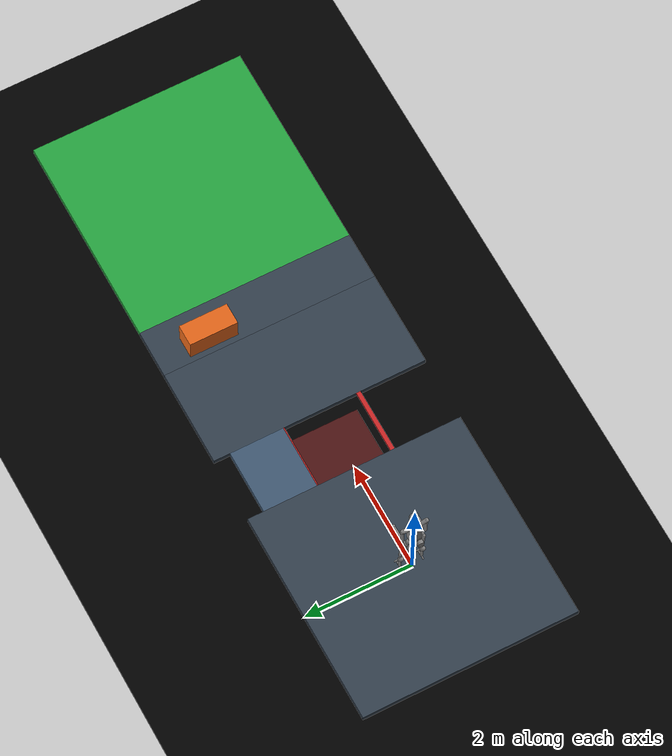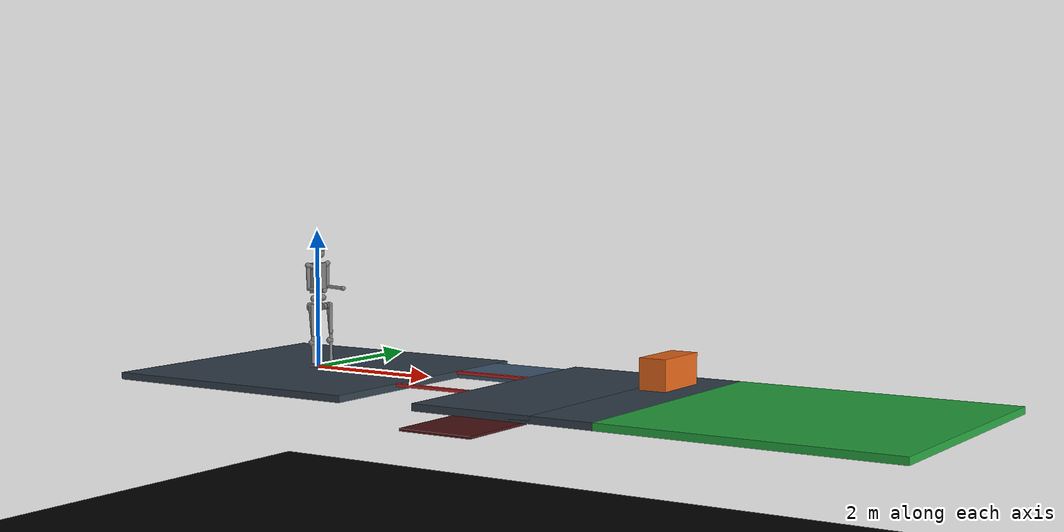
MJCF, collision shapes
<mujoco model="h1 obstacle course">
  <include file="h1.xml"/>

  <visual>
    <headlight diffuse="0.7 0.7 0.7" ambient="0.3 0.3 0.3" specular="0.1 0.1 0.1"/>
    <rgba haze="0.15 0.25 0.35 1"/>
    <global azimuth="150" elevation="-25"/>
  </visual>

  <asset>
    <texture type="skybox" builtin="gradient" rgb1="0.3 0.5 0.7" rgb2="0 0 0" width="512" height="3072"/>
    <texture type="2d" name="groundplane" builtin="checker" mark="edge" rgb1="0.25 0.3 0.35" rgb2="0.15 0.2 0.25"
      markrgb="0.8 0.8 0.8" width="300" height="300"/>
    <material name="groundplane" texture="groundplane" texuniform="true" texrepeat="5 5" reflectance="0.15"/>

    <texture type="2d" name="pit_texture" builtin="flat" rgb1="0.1 0.05 0.05" width="100" height="100"/>
    <material name="pit_mat" rgba="0.3 0.08 0.08 1" reflectance="0.05"/>
    <material name="pit_hazard" rgba="0.8 0.15 0.15 1"/>

    <material name="box_mat" rgba="0.9 0.4 0.1 1" reflectance="0.3"/>
    <material name="finish_mat" rgba="0.15 0.65 0.25 1" reflectance="0.2"/>
    <material name="bypass_mat" rgba="0.25 0.35 0.45 1" reflectance="0.2"/>
  </asset>

  <worldbody>
    <light pos="0 0 4.0" dir="0 0 -1" directional="true"/>
    <light pos="5 0 4.0" dir="0 0 -1" directional="true"/>

    <!-- ZONE 1: START AREA (x: -2.0 to +2.0)                             -->
    <geom name="start_platform" type="box" size="2.0 2.0 0.05" pos="0 0 -0.05" material="groundplane" contype="1" conaffinity="1"/>

    <!-- ZONE 2: PIT HAZARD (x: 2.0 to 3.2)                              -->
    <!-- Center path has a 1.2m wide pit (gap); side path has a bridge    -->
    <!-- Pit hole (bottom floor 0.6m deep) -->
    <geom name="pit_floor" type="box" size="0.6 0.7 0.02" pos="2.6 0 -0.65" material="pit_mat" contype="1" conaffinity="1"/>
    <!-- Pit warning hazard border -->
    <geom name="pit_border_left" type="box" size="0.6 0.04 0.02" pos="2.6 -0.72 -0.02" material="pit_hazard" contype="1" conaffinity="1"/>
    <geom name="pit_border_right" type="box" size="0.6 0.04 0.02" pos="2.6 0.72 -0.02" material="pit_hazard" contype="1" conaffinity="1"/>
    <!-- Side bypass lane (allows robot to navigate around the pit on the right side) -->
    <geom name="pit_bypass" type="box" size="0.6 0.5 0.05" pos="2.6 1.2 -0.05" material="bypass_mat" contype="1" conaffinity="1"/>

    <!-- ZONE 3: MID PLATFORM (x: 3.2 to 5.0)                             -->
    <geom name="mid_platform" type="box" size="0.9 2.0 0.05" pos="4.1 0 -0.05" material="groundplane" contype="1" conaffinity="1"/>

    <!-- ZONE 4: OBSTACLE BOX (at x: 5.3)                                 -->
    <!-- Square Box on the bypass trajectory (x=5.3, y=0.8, height=0.45m) -->
    <geom name="obstacle_box" type="box" size="0.20 0.45 0.22" pos="5.3 1.0 0.22" material="box_mat" contype="1" conaffinity="1"/>
    <geom name="box_platform" type="box" size="0.6 2.0 0.05" pos="5.3 0 -0.05" material="groundplane" contype="1" conaffinity="1"/>

    <!-- ZONE 5: FINISH AREA (x: 6.0 to 10.0)                             -->
    <geom name="finish_platform" type="box" size="2.0 2.0 0.05" pos="7.9 0 -0.05" material="finish_mat" contype="1" conaffinity="1"/>

    <!-- Deep catch net for clean simulation resets -->
    <geom name="safety_catch" type="box" size="15 10 0.01" pos="5 0 -2.5" rgba="0 0 0 0" contype="1" conaffinity="1"/>
  </worldbody>

  <keyframe>
    <key name="home" qpos="0 0 0.98 1 0 0 0 0 0 -0.4 0.8 -0.4 0 0 -0.4 0.8 -0.4 0 0 0 0 0 0 0 0 0"/>
  </keyframe>
</mujoco>

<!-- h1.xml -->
<mujoco model="h1">
  <compiler angle="radian" meshdir="assets" autolimits="true"/>

  <statistic meansize="0.05"/>

  <default>
    <default class="h1">
      <joint damping="1" armature="0.1"/>
      <default class="visual">
        <geom type="mesh" contype="0" conaffinity="0" group="2" material="black"/>
      </default>
      <default class="collision">
        <geom group="3" mass="0" density="0"/>
        <default class="foot">
          <geom type="capsule" size=".014"/>
          <default class="foot1">
            <geom fromto="-.035 0 -0.056 .02 0 -0.045"/>
          </default>
          <default class="foot2">
            <geom fromto=".02 0 -0.045 .115 0 -0.056"/>
          </default>
          <default class="foot3">
            <geom fromto=".14 -.03 -0.056 .14 .03 -0.056"/>
          </default>
        </default>
      </default>
      <site size="0.001" rgba="0.5 0.5 0.5 0.3" group="4"/>
    </default>
  </default>

  <asset>
    <material name="black" rgba="0.1 0.1 0.1 1"/>
    <material name="white" rgba="1 1 1 1"/>

    <mesh file="pelvis.stl"/>
    <mesh file="left_hip_yaw_link.stl"/>
    <mesh file="left_hip_roll_link.stl"/>
    <mesh file="left_hip_pitch_link.stl"/>
    <mesh file="left_knee_link.stl"/>
    <mesh file="left_ankle_link.stl"/>
    <mesh file="right_hip_yaw_link.stl"/>
    <mesh file="right_hip_roll_link.stl"/>
    <mesh file="right_hip_pitch_link.stl"/>
    <mesh file="right_knee_link.stl"/>
    <mesh file="right_ankle_link.stl"/>
    <mesh file="torso_link.stl"/>
    <mesh file="left_shoulder_pitch_link.stl"/>
    <mesh file="left_shoulder_roll_link.stl"/>
    <mesh file="left_shoulder_yaw_link.stl"/>
    <mesh file="left_elbow_link.stl"/>
    <mesh file="right_shoulder_pitch_link.stl"/>
    <mesh file="right_shoulder_roll_link.stl"/>
    <mesh file="right_shoulder_yaw_link.stl"/>
    <mesh file="right_elbow_link.stl"/>
    <mesh file="logo_link.stl"/>
  </asset>

  <worldbody>
    <light mode="targetbodycom" target="torso_link" pos="2 0 2.5"/>
    <body name="pelvis" pos="0 0 1.06" childclass="h1">
      <inertial pos="-0.0002 4e-05 -0.04522" quat="0.498303 0.499454 -0.500496 0.501741" mass="5.39"
        diaginertia="0.0490211 0.0445821 0.00824619"/>
      <freejoint/>
      <geom class="visual" mesh="pelvis"/>
      <body name="left_hip_yaw_link" pos="0 0.0875 -0.1742">
        <inertial pos="-0.04923 0.0001 0.0072" quat="0.69699 0.219193 0.233287 0.641667" mass="2.244"
          diaginertia="0.00304494 0.00296885 0.00189201"/>
        <joint name="left_hip_yaw" axis="0 0 1" range="-0.43 0.43"/>
        <geom class="visual" mesh="left_hip_yaw_link"/>
        <geom size="0.06 0.035" pos="-0.067 0 0" quat="0.707123 0 0.70709 0" type="cylinder" class="collision"/>
        <body name="left_hip_roll_link" pos="0.039468 0 0">
          <inertial pos="-0.0058 -0.00319 -9e-05" quat="0.0438242 0.70721 -0.0729075 0.701867" mass="2.232"
            diaginertia="0.00243264 0.00225325 0.00205492"/>
          <joint name="left_hip_roll" axis="1 0 0" range="-0.43 0.43"/>
          <geom class="visual" mesh="left_hip_roll_link"/>
          <geom class="collision" type="cylinder" size="0.05 0.03" quat="1 1 0 0" pos="0 -0.02 0"/>
          <body name="left_hip_pitch_link" pos="0 0.11536 0">
            <inertial pos="0.00746 -0.02346 -0.08193" quat="0.979828 0.0513522 -0.0169854 -0.192382" mass="4.152"
              diaginertia="0.0829503 0.0821457 0.00510909"/>
            <joint name="left_hip_pitch" axis="0 1 0" range="-1.57 1.57"/>
            <geom class="visual" mesh="left_hip_pitch_link"/>
            <geom class="collision" type="capsule" size="0.03" fromto="0.02 0 -0.4 -0.02 0 0.02"/>
            <geom class="collision" type="capsule" size="0.03" fromto="0.02 0 -0.4 0.02 0 0.02"/>
            <geom class="collision" type="cylinder" size="0.05 0.02" quat="1 1 0 0" pos="0 -0.07 0"/>
            <body name="left_knee_link" pos="0 0 -0.4">
              <inertial pos="-0.00136 -0.00512 -0.1384" quat="0.626132 -0.034227 -0.0416277 0.777852" mass="1.721"
                diaginertia="0.0125237 0.0123104 0.0019428"/>
              <joint name="left_knee" axis="0 1 0" range="-0.26 2.05"/>
              <geom class="visual" mesh="left_knee_link"/>
              <geom class="collision" type="capsule" size="0.025" fromto="0.02 0 -0.4 0.02 0 0"/>
              <geom class="collision" type="sphere" size="0.05" pos="0 0 -0.115"/>
              <body name="left_ankle_link" pos="0 0 -0.4">
                <inertial pos="0.06722 0.00015 -0.04497" quat="0.489101 0.503197 0.565782 0.432972" mass="0.446"
                  diaginertia="0.00220848 0.00218961 0.000214202"/>
                <joint name="left_ankle" axis="0 1 0" range="-0.87 0.52"/>
                <geom class="visual" mesh="left_ankle_link"/>
                <geom class="foot1"/>
                <geom class="foot2"/>
                <geom class="foot3"/>
              </body>
            </body>
          </body>
        </body>
      </body>
      <body name="right_hip_yaw_link" pos="0 -0.0875 -0.1742">
        <inertial pos="-0.04923 -0.0001 0.0072" quat="0.641667 0.233287 0.219193 0.69699" mass="2.244"
          diaginertia="0.00304494 0.00296885 0.00189201"/>
        <joint name="right_hip_yaw" axis="0 0 1" range="-0.43 0.43"/>
        <geom class="visual" mesh="right_hip_yaw_link"/>
        <geom size="0.06 0.035" pos="-0.067 0 0" quat="0.707123 0 0.70709 0" type="cylinder" class="collision"/>
        <body name="right_hip_roll_link" pos="0.039468 0 0">
          <inertial pos="-0.0058 0.00319 -9e-05" quat="-0.0438242 0.70721 0.0729075 0.701867" mass="2.232"
            diaginertia="0.00243264 0.00225325 0.00205492"/>
          <joint name="right_hip_roll" axis="1 0 0" range="-0.43 0.43"/>
          <geom class="visual" mesh="right_hip_roll_link"/>
          <geom class="collision" type="cylinder" size="0.05 0.03" quat="1 1 0 0" pos="0 0.02 0"/>
          <body name="right_hip_pitch_link" pos="0 -0.11536 0">
            <inertial pos="0.00746 0.02346 -0.08193" quat="0.979828 -0.0513522 -0.0169854 0.192382" mass="4.152"
              diaginertia="0.0829503 0.0821457 0.00510909"/>
            <joint name="right_hip_pitch" axis="0 1 0" range="-1.57 1.57"/>
            <geom class="visual" mesh="right_hip_pitch_link"/>
            <geom class="collision" type="capsule" size="0.03" fromto="0.02 0 -0.4 -0.02 0 0.02"/>
            <geom class="collision" type="capsule" size="0.03" fromto="0.02 0 -0.4 0.02 0 0.02"/>
            <geom class="collision" type="cylinder" size="0.05 0.02" quat="1 1 0 0" pos="0 0.07 0"/>
            <body name="right_knee_link" pos="0 0 -0.4">
              <inertial pos="-0.00136 0.00512 -0.1384" quat="0.777852 -0.0416277 -0.034227 0.626132" mass="1.721"
                diaginertia="0.0125237 0.0123104 0.0019428"/>
              <joint name="right_knee" axis="0 1 0" range="-0.26 2.05"/>
              <geom class="visual" mesh="right_knee_link"/>
              <geom class="collision" type="capsule" size="0.025" fromto="0.02 0 -0.4 0.02 0 0"/>
              <geom class="collision" type="sphere" size="0.05" pos="0 0 -0.115"/>
              <body name="right_ankle_link" pos="0 0 -0.4">
                <inertial pos="0.06722 -0.00015 -0.04497" quat="0.432972 0.565782 0.503197 0.489101" mass="0.446"
                  diaginertia="0.00220848 0.00218961 0.000214202"/>
                <joint name="right_ankle" axis="0 1 0" range="-0.87 0.52"/>
                <geom class="visual" mesh="right_ankle_link"/>
                <geom class="foot1"/>
                <geom class="foot2"/>
                <geom class="foot3"/>
              </body>
            </body>
          </body>
        </body>
      </body>
      <body name="torso_link">
        <inertial pos="0.000489 0.002797 0.20484" quat="0.999989 -0.00130808 -0.00282289 -0.00349105" mass="17.789"
          diaginertia="0.487315 0.409628 0.127837"/>
        <joint name="torso" axis="0 0 1" range="-2.35 2.35"/>
        <geom class="visual" mesh="torso_link"/>
        <geom class="visual" material="white" mesh="logo_link"/>
        <geom name="head" class="collision" type="capsule" size="0.06" fromto="0.05 0 0.68 0.05 0 0.6"/>
        <geom name="helmet" class="collision" type="sphere" size="0.073" pos="0.045 0 0.68"/>
        <geom name="torso" class="collision" type="box" size="0.07 0.1 0.22" pos="0 0 0.25"/>
        <geom name="hip" class="collision" type="capsule" size="0.05" fromto="0 -0.1 -0.05 0 0.1 -0.05"/>
        <site name="imu" pos="-0.04452 -0.01891 0.27756"/>
        <body name="left_shoulder_pitch_link" pos="0.0055 0.15535 0.42999" quat="0.976296 0.216438 0 0">
          <inertial pos="0.005045 0.053657 -0.015715" quat="0.814858 0.579236 -0.0201072 -0.00936488" mass="1.033"
            diaginertia="0.00129936 0.000987113 0.000858198"/>
          <joint name="left_shoulder_pitch" axis="0 1 0" range="-2.87 2.87"/>
          <geom class="visual" mesh="left_shoulder_pitch_link"/>
          <body name="left_shoulder_roll_link" pos="-0.0055 0.0565 -0.0165" quat="0.976296 -0.216438 0 0">
            <inertial pos="0.000679 0.00115 -0.094076" quat="0.732491 0.00917179 0.0766656 0.676384" mass="0.793"
              diaginertia="0.00170388 0.00158256 0.00100336"/>
            <joint name="left_shoulder_roll" axis="1 0 0" range="-0.34 3.11"/>
            <geom class="visual" mesh="left_shoulder_roll_link"/>
            <geom name="left_shoulder" class="collision" type="capsule" size="0.04"
              fromto="0 0.01 0.008 0 -0.07 -0.02"/>
            <body name="left_shoulder_yaw_link" pos="0 0 -0.1343">
              <inertial pos="0.01365 0.002767 -0.16266" quat="0.703042 -0.0331229 -0.0473362 0.708798" mass="0.839"
                diaginertia="0.00408038 0.00370367 0.000622687"/>
              <joint name="left_shoulder_yaw" axis="0 0 1" range="-1.3 4.45"/>
              <geom class="visual" mesh="left_shoulder_yaw_link"/>
              <geom class="collision" type="capsule" size="0.03" fromto="0 0 0.15 0 0 -0.2"/>
              <body name="left_elbow_link" pos="0.0185 0 -0.198">
                <inertial pos="0.15908 -0.000144 -0.015776" quat="0.0765232 0.720327 0.0853116 0.684102" mass="0.669"
                  diaginertia="0.00601829 0.00600579 0.000408305"/>
                <joint name="left_elbow" axis="0 1 0" range="-1.25 2.61"/>
                <geom class="visual" mesh="left_elbow_link"/>
                <geom class="collision" type="capsule" size="0.025" fromto="0 0 0 0.28 0 -0.015"/>
                <geom class="collision" type="sphere" size="0.033" pos="0.28 0 -0.015"/>
              </body>
            </body>
          </body>
        </body>
        <body name="right_shoulder_pitch_link" pos="0.0055 -0.15535 0.42999" quat="0.976296 -0.216438 0 0">
          <inertial pos="0.005045 -0.053657 -0.015715" quat="0.579236 0.814858 0.00936488 0.0201072" mass="1.033"
            diaginertia="0.00129936 0.000987113 0.000858198"/>
          <joint name="right_shoulder_pitch" axis="0 1 0" range="-2.87 2.87"/>
          <geom class="visual" mesh="right_shoulder_pitch_link"/>
          <body name="right_shoulder_roll_link" pos="-0.0055 -0.0565 -0.0165" quat="0.976296 0.216438 0 0">
            <inertial pos="0.000679 -0.00115 -0.094076" quat="0.676384 0.0766656 0.00917179 0.732491" mass="0.793"
              diaginertia="0.00170388 0.00158256 0.00100336"/>
            <joint name="right_shoulder_roll" axis="1 0 0" range="-3.11 0.34"/>
            <geom class="visual" mesh="right_shoulder_roll_link"/>
            <geom name="right_shoulder" class="collision" type="capsule" size="0.04"
              fromto="0 -0.01 0.008 0 0.07 -0.02"/>
            <body name="right_shoulder_yaw_link" pos="0 0 -0.1343">
              <inertial pos="0.01365 -0.002767 -0.16266" quat="0.708798 -0.0473362 -0.0331229 0.703042" mass="0.839"
                diaginertia="0.00408038 0.00370367 0.000622687"/>
              <joint name="right_shoulder_yaw" axis="0 0 1" range="-4.45 1.3"/>
              <geom class="visual" mesh="right_shoulder_yaw_link"/>
              <geom class="collision" type="capsule" size="0.03" fromto="0 0 0.15 0 0 -0.2"/>
              <body name="right_elbow_link" pos="0.0185 0 -0.198">
                <inertial pos="0.15908 0.000144 -0.015776" quat="-0.0765232 0.720327 -0.0853116 0.684102" mass="0.669"
                  diaginertia="0.00601829 0.00600579 0.000408305"/>
                <joint name="right_elbow" axis="0 1 0" range="-1.25 2.61"/>
                <geom class="visual" mesh="right_elbow_link"/>
                <geom class="collision" type="capsule" size="0.025" fromto="0 0 0 0.28 0 -0.015"/>
                <geom class="collision" type="sphere" size="0.033" pos="0.28 0 -0.015"/>
              </body>
            </body>
          </body>
        </body>
      </body>
    </body>
  </worldbody>

  <contact>
    <exclude body1="torso_link" body2="left_shoulder_roll_link"/>
    <exclude body1="torso_link" body2="right_shoulder_roll_link"/>
  </contact>

  <actuator>
    <motor class="h1" name="left_hip_yaw" joint="left_hip_yaw" ctrlrange="-200 200"/>
    <motor class="h1" name="left_hip_roll" joint="left_hip_roll" ctrlrange="-200 200"/>
    <motor class="h1" name="left_hip_pitch" joint="left_hip_pitch" ctrlrange="-200 200"/>
    <motor class="h1" name="left_knee" joint="left_knee" ctrlrange="-300 300"/>
    <motor class="h1" name="left_ankle" joint="left_ankle" ctrlrange="-40 40"/>
    <motor class="h1" name="right_hip_yaw" joint="right_hip_yaw" ctrlrange="-200 200"/>
    <motor class="h1" name="right_hip_roll" joint="right_hip_roll" ctrlrange="-200 200"/>
    <motor class="h1" name="right_hip_pitch" joint="right_hip_pitch" ctrlrange="-200 200"/>
    <motor class="h1" name="right_knee" joint="right_knee" ctrlrange="-300 300"/>
    <motor class="h1" name="right_ankle" joint="right_ankle" ctrlrange="-40 40"/>
    <motor class="h1" name="torso" joint="torso" ctrlrange="-200 200"/>
    <motor class="h1" name="left_shoulder_pitch" joint="left_shoulder_pitch" ctrlrange="-40 40"/>
    <motor class="h1" name="left_shoulder_roll" joint="left_shoulder_roll" ctrlrange="-40 40"/>
    <motor class="h1" name="left_shoulder_yaw" joint="left_shoulder_yaw" ctrlrange="-18 18"/>
    <motor class="h1" name="left_elbow" joint="left_elbow" ctrlrange="-18 18"/>
    <motor class="h1" name="right_shoulder_pitch" joint="right_shoulder_pitch" ctrlrange="-40 40"/>
    <motor class="h1" name="right_shoulder_roll" joint="right_shoulder_roll" ctrlrange="-40 40"/>
    <motor class="h1" name="right_shoulder_yaw" joint="right_shoulder_yaw" ctrlrange="-18 18"/>
    <motor class="h1" name="right_elbow" joint="right_elbow" ctrlrange="-18 18"/>
  </actuator>

  <sensor>
    <accelerometer name="imu_accel" site="imu"/>
    <gyro name="imu_gyro" site="imu"/>
  </sensor>
</mujoco>
